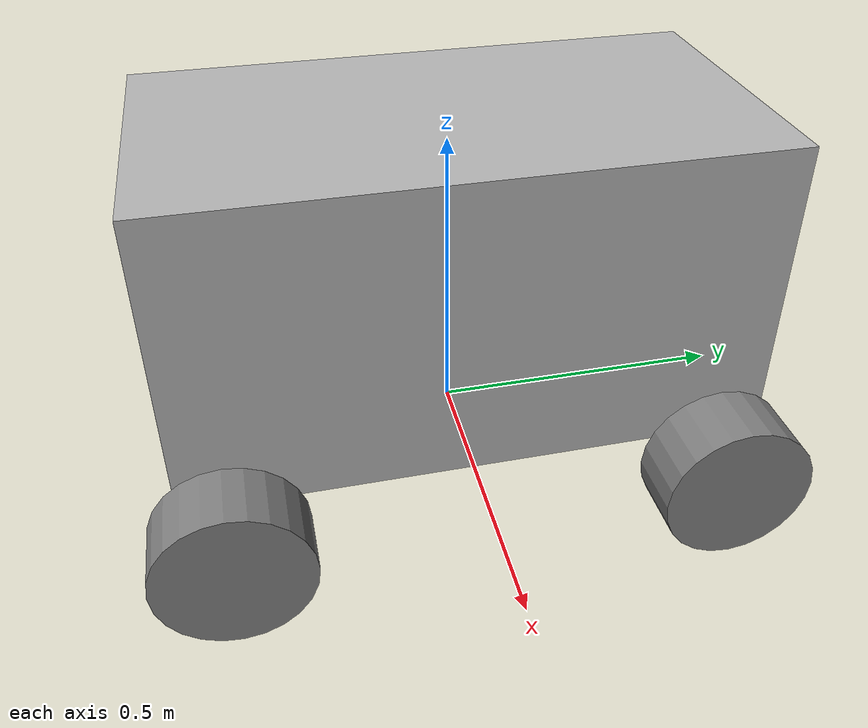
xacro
<!--COPY THIS TO YOUR OWN "my_robot.xacro"-->
<?xml version="1.0"?>
<robot name="my_robot" xmlns:xacro="http://www.ros.org/wiki/xacro">

  <!-- Define common material -->
  <xacro:property name="gray_color" value="0.7 0.7 0.7 1"/>
  <!-- Macro for a mesh link -->
  <xacro:macro name="box_link" params="link_name mass ix iy iz xyz rpy">
    <link name="${link_name}">
      <inertial>
        <origin xyz="${xyz}" rpy="${rpy}"/>
        <mass value="${mass}"/>
        <inertia ixx="${ix}" ixy="0" ixz="0" iyy="${iy}" iyz="0" izz="${iz}"/>
      </inertial>
      <visual>
        <origin xyz="${xyz}" rpy="${rpy}"/>
        <geometry>
          <box size="0.5 0.95 0.5"/>
        </geometry>
        <material name="gray">
          <color rgba="${gray_color}"/>
        </material>
      </visual>
      <collision>
        <origin xyz="${xyz}" rpy="${rpy}"/>
        <geometry>
          <box size="0.95 0.5 0.5"/>
        </geometry>
      </collision>
    </link>
  </xacro:macro>

  <!-- Macro for a cylinder link (wheel) -->
  <xacro:macro name="cylinder_link" params="link_name mass radius length ix iy iz xyz rpy">
    <link name="${link_name}">
      <inertial>
        <origin xyz="${xyz}" rpy="${rpy}"/>
        <mass value="${mass}"/>
        <inertia ixx="${ix}" ixy="0" ixz="0" iyy="${iy}" iyz="0" izz="${iz}"/>
      </inertial>
      <visual>
        <origin xyz="${xyz}" rpy="${rpy}"/>
        <geometry>
          <cylinder radius="${radius}" length="${length}"/>
        </geometry>
        <material name="gray">
          <color rgba="0.5 0.5 0.5 1"/>
        </material>
      </visual>
      <collision>
        <origin xyz="${xyz}" rpy="${rpy}"/>
        <geometry>
          <cylinder radius="${radius}" length="${length}"/>
        </geometry>
      </collision>
    </link>
  </xacro:macro>

  <!-- Link 0 (Main Body) -->
  <xacro:box_link
    link_name="base_link"
    mass="58.7"
    ix="0.166667"
    iy="0.166667"
    iz="0.166667"
    xyz="0 0 .3"
    rpy="0 0 0"/>
  <!-- Front Left Wheel -->
  <xacro:cylinder_link
    link_name="wheel_link_front_left"
    mass="1.0"
    radius="0.125"
    length="0.11"
    ix="0.001"
    iy="0.001"
    iz="0.001"
    xyz="0 0 0"
    rpy="1.5708 0 0"/>
  <xacro:cylinder_link
    link_name="wheel_link_front_right"
    mass="1.0"
    radius="0.125"
    length="0.11"
    ix="0.001"
    iy="0.001"
    iz="0.001"
    xyz="0 0 0"
    rpy="1.5708 0 0"/>
  <xacro:cylinder_link
    link_name="wheel_link_back_left"
    mass="1.0"
    radius="0.125"
    length="0.11"
    ix="0.001"
    iy="0.001"
    iz="0.001"
    xyz="0 0 0"
    rpy="1.5708 0 0"/>
  <xacro:cylinder_link
    link_name="wheel_link_back_right"
    mass="1.0"
    radius="0.125"
    length="0.110"
    ix="0.001"
    iy="0.001"
    iz="0.001"
    xyz="0 0 0"
    rpy="1.5708 0 0"/>

  <!-- Joint connecting front left wheel to the main body -->
  <joint name="wheel_joint_front_left" type="continuous">
    <parent link="base_link"/>
    <child link="wheel_link_front_left"/>
    <origin xyz="0.305 .4 0" rpy="0 0 1.5708"/>
    <axis xyz="0 1 0"/>
    <limit effort="10" velocity="5.0"/>
  </joint>
  <joint name="wheel_joint_front_right" type="continuous">
    <parent link="base_link"/>
    <child link="wheel_link_front_right"/>
    <origin xyz="-0.305 .4 0" rpy="0 0 1.5708"/>
    <axis xyz="0 1 0"/>
    <limit effort="10" velocity="5.0"/>
  </joint>
  <joint name="wheel_joint_back_left" type="continuous">
    <parent link="base_link"/>
    <child link="wheel_link_back_left"/>
    <origin xyz="0.305 -.4 0" rpy="0 0 1.5708"/>
    <axis xyz="0 1 0"/>
    <limit effort="10" velocity="5.0"/>
  </joint>
  <joint name="wheel_joint_back_right" type="continuous">
    <parent link="base_link"/>
    <child link="wheel_link_back_right"/>
    <origin xyz="-0.305 -.4 0" rpy="0 0 1.5708"/>
    <axis xyz="0 1 0"/>
    <limit effort="10" velocity="5.0"/>
  </joint>

  <!-- Transmission for wheel_joint_back_right -->
  <transmission name="front_left_wheel_transmission">
    <type>transmission_interface/SimpleTransmission</type>
    <joint name="wheel_joint_front_left">
      <hardwareInterface>hardware_interface/VelocityJointInterface</hardwareInterface>
    </joint>
  </transmission>
  <transmission name="front_right_wheel_transmission">
    <type>transmission_interface/SimpleTransmission</type>
    <joint name="wheel_joint_front_right">
      <hardwareInterface>hardware_interface/VelocityJointInterface</hardwareInterface>
    </joint>
  </transmission>
  <transmission name="back_left_wheel_transmission">
    <type>transmission_interface/SimpleTransmission</type>
    <joint name="wheel_joint_back_left">
      <hardwareInterface>hardware_interface/VelocityJointInterface</hardwareInterface>
    </joint>
  </transmission>
  <transmission name="back_right_wheel_transmission">
    <type>transmission_interface/SimpleTransmission</type>
    <joint name="wheel_joint_back_right">
      <hardwareInterface>hardware_interface/VelocityJointInterface</hardwareInterface>
    </joint>
  </transmission>
</robot>
